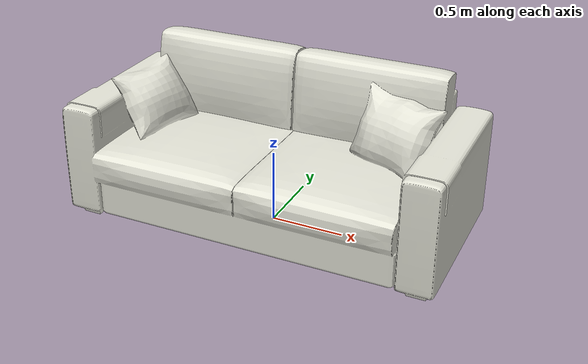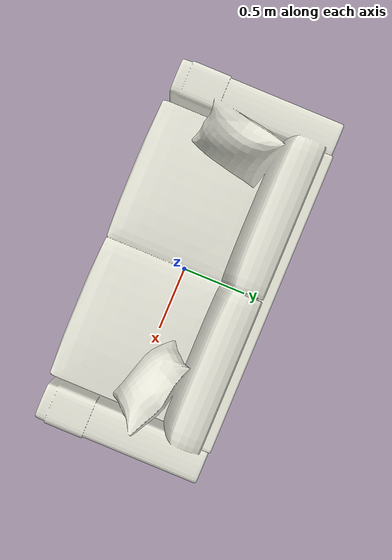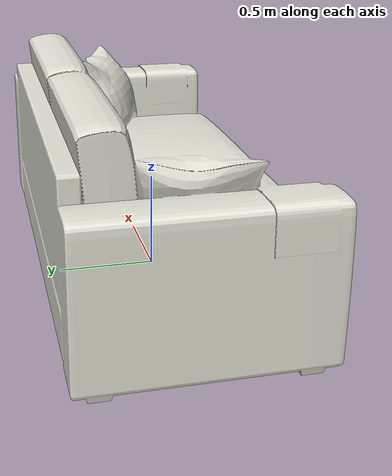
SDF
<sdf version="1.4">
  <model name="sofa">
    <static>1</static>
    <link name="link">

      <collision name="colision1">
        <pose>0 0 0 0 0 0</pose>
        <geometry>
          <mesh>
            <uri>model://sofa/meshes/sofa.stl</uri>
	    <scale> 1 1 1 </scale>
          </mesh>
        </geometry>
        <surface>
          <bounce />
          <friction>
            <ode />
          </friction>
          <contact>
            <ode />
          </contact>
        </surface>
      </collision>

      <visual name="visual1">
        <pose>0 0 0 0 0 0</pose>
        <geometry>
          <mesh>
            <uri>model://sofa/meshes/sofa.stl</uri>
	    <scale> 1 1 1 </scale>
          </mesh>
        </geometry>
        <material>
          <!-- V8: script Gazebo/PaintedWall (Gazebo Classic) -->
          <ambient>0.90 0.90 0.85 1</ambient>
          <diffuse>0.90 0.90 0.85 1</diffuse>
          <specular>0.1 0.1 0.1 1</specular>
        </material>
      </visual>

      <velocity_decay>
        <linear>0.000000</linear>
        <angular>0.000000</angular>
      </velocity_decay>
      <self_collide>0</self_collide>
      <kinematic>0</kinematic>
      <gravity>1</gravity>
    </link>
  </model>
</sdf>
